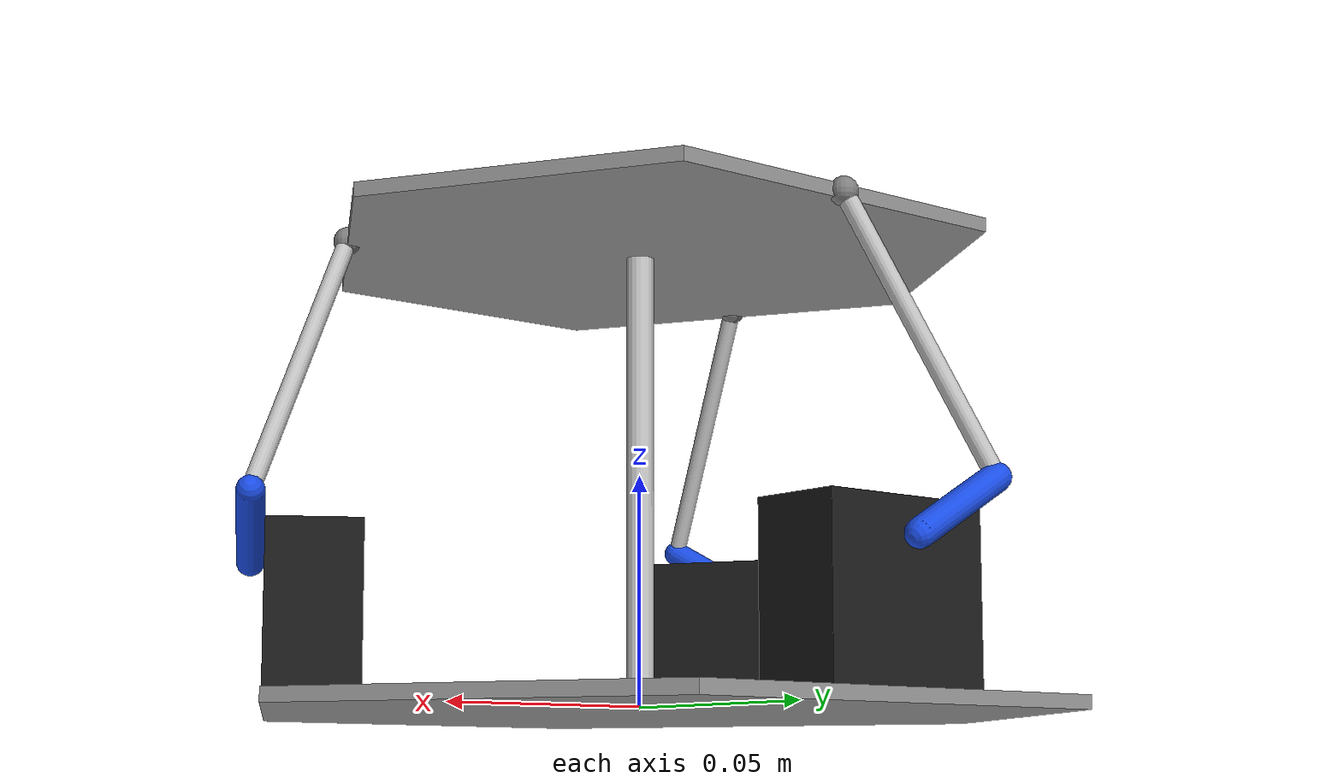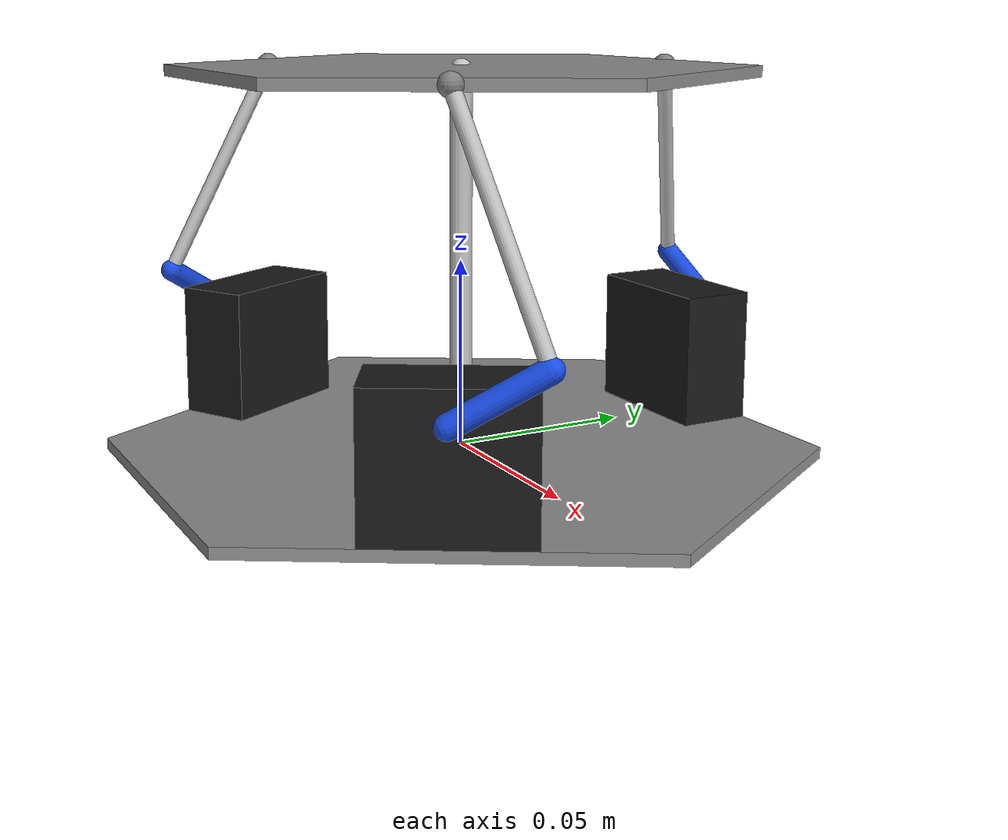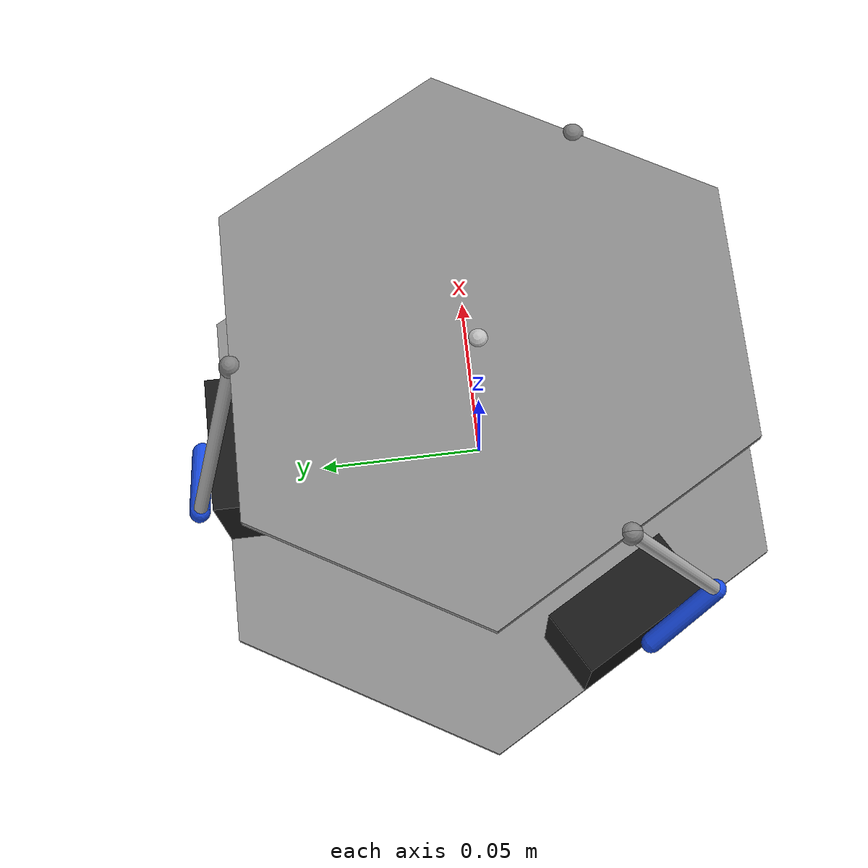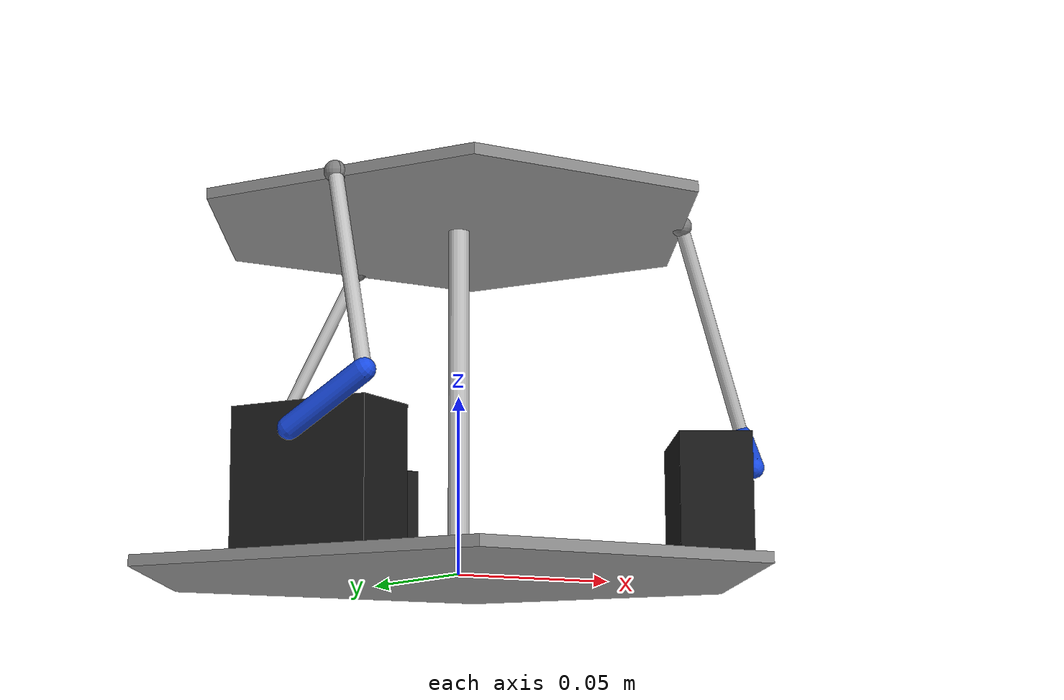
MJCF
<!-- 3-RSS face: 3 servos -> rod1 (horn) -> rod2 -> face, face rides a center post (lift + tilt). -->
<mujoco model="glados_push">
  <compiler angle="radian"/>
  <option timestep="0.002"/>
  <default>
    <!-- parts overlap by design; collisions would fight the loop constraints -->
    <geom contype="0" conaffinity="0"/>
  </default>
  <visual><headlight ambient="0.4 0.4 0.4"/></visual>

  <asset>
    <mesh name="linact_plate" file="plate.obj"/>
    <mesh name="face_plate" file="face.obj"/>
    <material name="servo" rgba="0.1 0.1 0.1 1" shininess="0.2" specular="0.2"/>
    <material name="horn" rgba="0.1 0.3 0.9 1"/>
    <material name="rod" rgba="0.75 0.75 0.75 1" shininess="0.6" specular="0.5"/>
    <material name="gray" rgba="0.55 0.55 0.55 1" shininess="0.3" specular="0.2"/>
  </asset>

  <worldbody>
    <light name="top" pos="0 0 2" dir="0 0 -1" diffuse="0.8 0.8 0.8"/>
    <geom name="linact_base_plate" type="mesh" mesh="linact_plate" material="gray"/>

    <!-- BEGIN gen_linkage -->
    <!-- Center post: without it 3 RSS legs leave the face with 3 free DOF (it would drift sideways/spin).
         Visual only; the face's lift+tilt joints below are what it enforces. -->
    <geom name="center_post" type="capsule" fromto="0 0 0.0015 0 0 0.1" size="0.003" material="rod"/>

    <!-- GLaDOS face, 100mm above base. -->
    <body name="face" pos="0 0 0.1">
      <!-- center guide: face can lift (slide) and tilt (2 hinges), no yaw = 3 DOF for 3 servos -->
      <joint name="face_lift" type="slide" axis="0 0 1" damping="0.05"/>
      <joint name="face_roll" type="hinge" axis="1 0 0" damping="0.01"/>
      <joint name="face_pitch" type="hinge" axis="0 1 0" damping="0.01"/>
      <geom name="face_plate" type="mesh" mesh="face_plate" material="gray"/>
      <site name="face_0" pos="0 0.064 0" size="0.003"/>
      <site name="face_1" pos="-0.05543 -0.032 0" size="0.003"/>
      <site name="face_2" pos="0.05543 -0.032 0" size="0.003"/>
    </body>

    <!-- Servos: sit on the base plate top, flush against each flat end. -->
    <geom name="servo0" type="box" size="0.02 0.01 0.018" pos="0 0.07 0.0195" euler="0 0 0" material="servo"/>
    <geom name="servo1" type="box" size="0.02 0.01 0.018" pos="-0.06062 -0.035 0.0195" euler="0 0 2.0944" material="servo"/>
    <geom name="servo2" type="box" size="0.02 0.01 0.018" pos="0.06062 -0.035 0.0195" euler="0 0 4.18879" material="servo"/>

    <!-- station 0 (90 deg): servo shaft (normal to servo face) -> rod1 (horn, sweeps parallel to face) -> rod2 -> face flat-end center -->
    <body name="rod1_0" pos="0 0.083 0.03">
      <joint name="servo0_joint" type="hinge" axis="0 1 0" range="0 2.0944" damping="0.05" armature="0.001"/>
      <geom type="capsule" fromto="0 0 0 -0.02165 0 0.0125" size="0.003" material="horn"/>
      <body name="rod2_0" pos="-0.02165 0 0.0125">
        <joint name="rod2_0_ball" type="ball" damping="0.001"/>
        <geom type="capsule" fromto="0 0 0 0.02165 -0.019 0.0575" size="0.002" material="rod"/>
        <site name="rod2_0_tip" pos="0.02165 -0.019 0.0575" size="0.003"/>
      </body>
    </body>
    <!-- station 1 (210 deg): servo shaft (normal to servo face) -> rod1 (horn, sweeps parallel to face) -> rod2 -> face flat-end center -->
    <body name="rod1_1" pos="-0.07188 -0.0415 0.03">
      <joint name="servo1_joint" type="hinge" axis="-0.86603 -0.5 0" range="0 2.0944" damping="0.05" armature="0.001"/>
      <geom type="capsule" fromto="0 0 0 0.01083 -0.01875 0.0125" size="0.003" material="horn"/>
      <body name="rod2_1" pos="0.01083 -0.01875 0.0125">
        <joint name="rod2_1_ball" type="ball" damping="0.001"/>
        <geom type="capsule" fromto="0 0 0 0.00563 0.02825 0.0575" size="0.002" material="rod"/>
        <site name="rod2_1_tip" pos="0.00563 0.02825 0.0575" size="0.003"/>
      </body>
    </body>
    <!-- station 2 (330 deg): servo shaft (normal to servo face) -> rod1 (horn, sweeps parallel to face) -> rod2 -> face flat-end center -->
    <body name="rod1_2" pos="0.07188 -0.0415 0.03">
      <joint name="servo2_joint" type="hinge" axis="0.86603 -0.5 0" range="0 2.0944" damping="0.05" armature="0.001"/>
      <geom type="capsule" fromto="0 0 0 0.01083 0.01875 0.0125" size="0.003" material="horn"/>
      <body name="rod2_2" pos="0.01083 0.01875 0.0125">
        <joint name="rod2_2_ball" type="ball" damping="0.001"/>
        <geom type="capsule" fromto="0 0 0 -0.02728 -0.00925 0.0575" size="0.002" material="rod"/>
        <site name="rod2_2_tip" pos="-0.02728 -0.00925 0.0575" size="0.003"/>
      </body>
    </body>
    <!-- END gen_linkage -->
  </worldbody>

  <actuator>
    <!-- BEGIN gen_linkage actuators -->
    <position name="servo0" joint="servo0_joint" kp="2" ctrlrange="0 2.0944"/>
    <position name="servo1" joint="servo1_joint" kp="2" ctrlrange="0 2.0944"/>
    <position name="servo2" joint="servo2_joint" kp="2" ctrlrange="0 2.0944"/>
    <!-- END gen_linkage actuators -->
  </actuator>

  <!-- close each leg: rod2 tip pinned to the face's flat-end center -->
  <equality>
    <connect solref="0.002 1" site1="rod2_0_tip" site2="face_0"/>
    <connect solref="0.002 1" site1="rod2_1_tip" site2="face_1"/>
    <connect solref="0.002 1" site1="rod2_2_tip" site2="face_2"/>
  </equality>
</mujoco>
